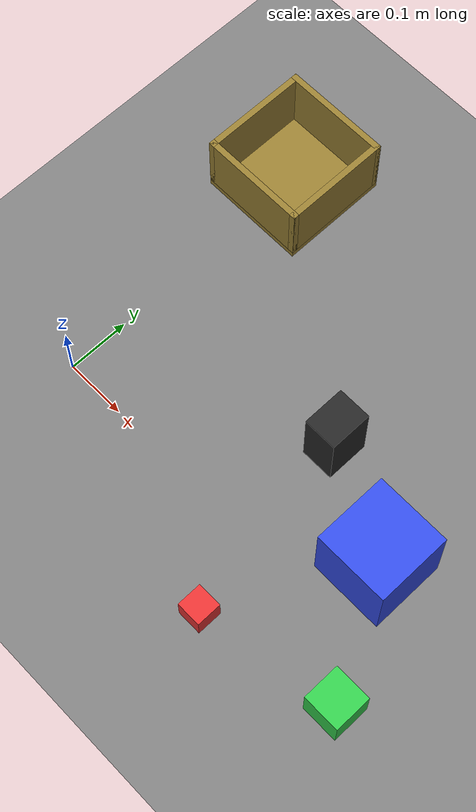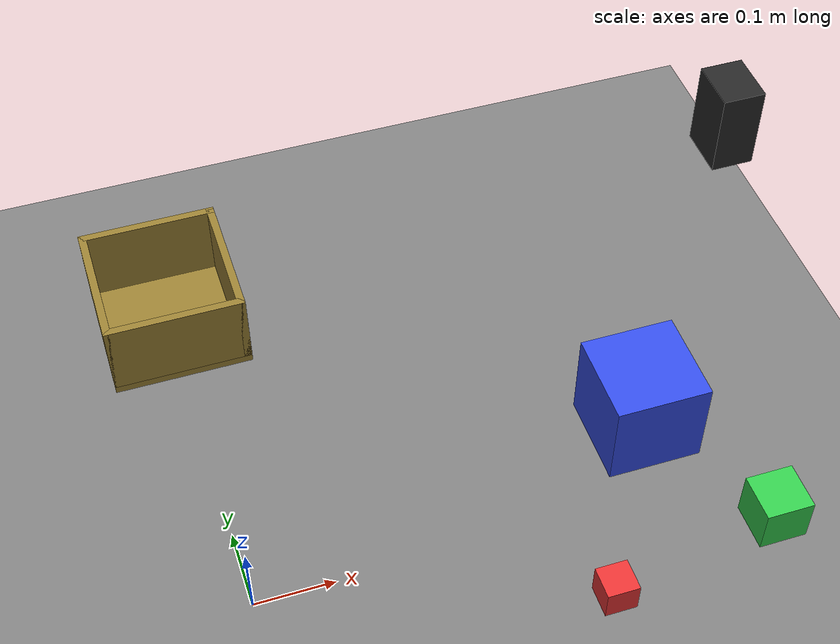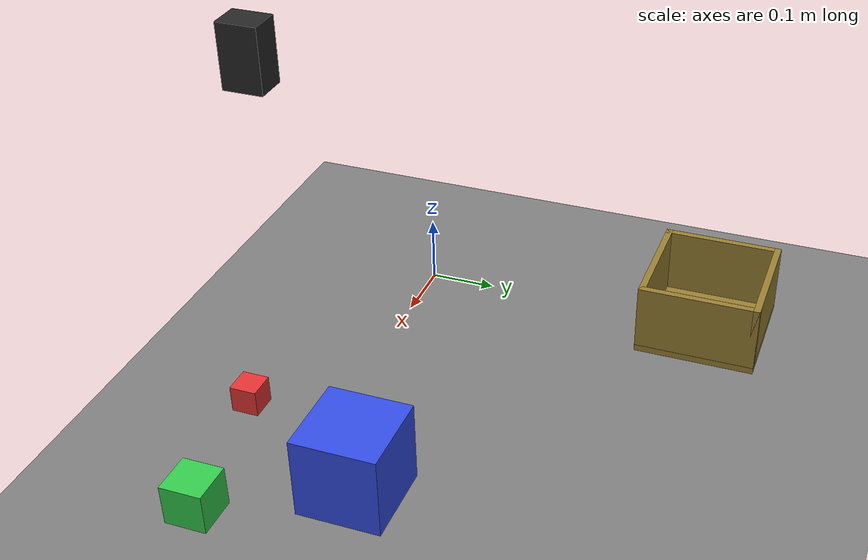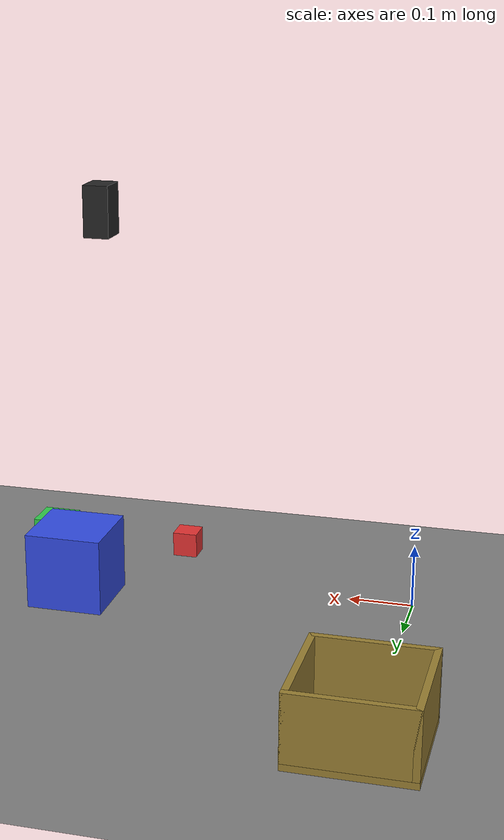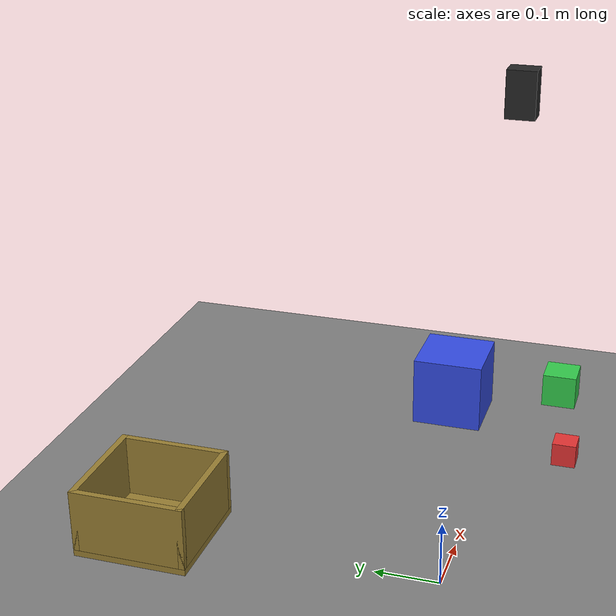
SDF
<?xml version="1.0" ?>
<sdf version="1.9">
  <world name="empty">
    <physics name="1ms" type="ignored">
      <max_step_size>0.001</max_step_size>
      <real_time_factor>1.0</real_time_factor>
    </physics>
    <plugin filename="gz-sim-physics-system" name="gz::sim::systems::Physics"><engine><filename>gz-physics-bullet-featherstone-plugin</filename></engine></plugin>
    <plugin filename="gz-sim-user-commands-system" name="gz::sim::systems::UserCommands"/>
    <plugin filename="gz-sim-scene-broadcaster-system" name="gz::sim::systems::SceneBroadcaster"/>
    <plugin filename="gz-sim-sensors-system" name="gz::sim::systems::Sensors">
      <render_engine>ogre2</render_engine>
    </plugin>

    <light type="directional" name="sun">
      <cast_shadows>true</cast_shadows>
      <pose>0 0 10 0 0 0</pose>
      <diffuse>1 1 1 1</diffuse>
      <specular>0.5 0.5 0.5 1</specular>
      <direction>-0.5 0.1 -0.9</direction>
    </light>

    <model name="ground_plane">
      <static>true</static>
      <link name="link">
        <collision name="collision">
          <geometry><plane><normal>0 0 1</normal><size>10 10</size></plane></geometry>
        </collision>
        <visual name="visual">
          <geometry><plane><normal>0 0 1</normal><size>10 10</size></plane></geometry>
          <material><ambient>0.3 0.3 0.3 1</ambient><diffuse>0.5 0.5 0.5 1</diffuse></material>
        </visual>
      </link>
    </model>

    <model name="box_small">
      <pose>0.40 -0.12 0.02 0 0 0</pose>
      <link name="link">
        <inertial><mass>0.1</mass>
          <inertia><ixx>0.000027</ixx><iyy>0.000027</iyy><izz>0.000027</izz><ixy>0</ixy><ixz>0</ixz><iyz>0</iyz></inertia>
        </inertial>
        <collision name="c"><geometry><box><size>0.04 0.04 0.04</size></box></geometry><surface><friction><ode><mu>1.5</mu><mu2>1.5</mu2></ode></friction></surface></collision>
        <visual name="v"><geometry><box><size>0.04 0.04 0.04</size></box></geometry>
          <material><ambient>0.9 0.2 0.2 1</ambient><diffuse>0.9 0.2 0.2 1</diffuse></material></visual>
      </link>
    </model>

    <model name="box_large">
      <pose>0.52 0.10 0.06 0 0 0</pose>
      <link name="link">
        <inertial><mass>0.5</mass>
          <inertia><ixx>0.0012</ixx><iyy>0.0012</iyy><izz>0.0012</izz><ixy>0</ixy><ixz>0</ixz><iyz>0</iyz></inertia>
        </inertial>
        <collision name="c"><geometry><box><size>0.12 0.12 0.12</size></box></geometry><surface><friction><ode><mu>1.5</mu><mu2>1.5</mu2></ode></friction></surface></collision>
        <visual name="v"><geometry><box><size>0.12 0.12 0.12</size></box></geometry>
          <material><ambient>0.2 0.3 0.9 1</ambient><diffuse>0.2 0.3 0.9 1</diffuse></material></visual>
      </link>
    </model>

    <model name="box_medium">
      <pose>0.62 -0.08 0.03 0 0 0</pose>
      <link name="link">
        <inertial><mass>0.2</mass>
          <inertia><ixx>0.00012</ixx><iyy>0.00012</iyy><izz>0.00012</izz><ixy>0</ixy><ixz>0</ixz><iyz>0</iyz></inertia>
        </inertial>
        <collision name="c"><geometry><box><size>0.06 0.06 0.06</size></box></geometry><surface><friction><ode><mu>1.5</mu><mu2>1.5</mu2></ode></friction></surface></collision>
        <visual name="v"><geometry><box><size>0.06 0.06 0.06</size></box></geometry>
          <material><ambient>0.2 0.8 0.3 1</ambient><diffuse>0.2 0.8 0.3 1</diffuse></material></visual>
      </link>
    </model>

    <model name="container">
      <static>true</static>
      <pose>0.0 0.45 0 0 0 0</pose>
      <link name="link">
        <collision name="floor"><pose>0 0 0.005 0 0 0</pose><geometry><box><size>0.18 0.18 0.01</size></box></geometry></collision>
        <visual name="floor_v"><pose>0 0 0.005 0 0 0</pose><geometry><box><size>0.18 0.18 0.01</size></box></geometry>
          <material><ambient>0.6 0.5 0.2 1</ambient><diffuse>0.6 0.5 0.2 1</diffuse></material></visual>
        <collision name="w1"><pose>0.085 0 0.06 0 0 0</pose><geometry><box><size>0.01 0.18 0.1</size></box></geometry></collision>
        <visual name="w1v"><pose>0.085 0 0.06 0 0 0</pose><geometry><box><size>0.01 0.18 0.1</size></box></geometry>
          <material><ambient>0.6 0.5 0.2 1</ambient><diffuse>0.6 0.5 0.2 1</diffuse></material></visual>
        <collision name="w2"><pose>-0.085 0 0.06 0 0 0</pose><geometry><box><size>0.01 0.18 0.1</size></box></geometry></collision>
        <visual name="w2v"><pose>-0.085 0 0.06 0 0 0</pose><geometry><box><size>0.01 0.18 0.1</size></box></geometry>
          <material><ambient>0.6 0.5 0.2 1</ambient><diffuse>0.6 0.5 0.2 1</diffuse></material></visual>
        <collision name="w3"><pose>0 0.085 0.06 0 0 0</pose><geometry><box><size>0.18 0.01 0.1</size></box></geometry></collision>
        <visual name="w3v"><pose>0 0.085 0.06 0 0 0</pose><geometry><box><size>0.18 0.01 0.1</size></box></geometry>
          <material><ambient>0.6 0.5 0.2 1</ambient><diffuse>0.6 0.5 0.2 1</diffuse></material></visual>
        <collision name="w4"><pose>0 -0.085 0.06 0 0 0</pose><geometry><box><size>0.18 0.01 0.1</size></box></geometry></collision>
        <visual name="w4v"><pose>0 -0.085 0.06 0 0 0</pose><geometry><box><size>0.18 0.01 0.1</size></box></geometry>
          <material><ambient>0.6 0.5 0.2 1</ambient><diffuse>0.6 0.5 0.2 1</diffuse></material></visual>
      </link>
    </model>

    <model name="rgbd_camera">
      <static>true</static>
      <pose>0.5 0 0.6 0 1.5707 0</pose>
      <link name="link">
        <visual name="camera_body">
          <geometry><box><size>0.08 0.05 0.04</size></box></geometry>
          <material><ambient>0.1 0.1 0.1 1</ambient><diffuse>0.15 0.15 0.15 1</diffuse></material>
        </visual>
        <sensor name="rgbd" type="rgbd_camera">
          <camera>
            <horizontal_fov>1.047</horizontal_fov>
            <image><width>640</width><height>480</height></image>
            <clip><near>0.05</near><far>8.0</far></clip>
          </camera>
          <always_on>1</always_on>
          <update_rate>15</update_rate>
          <topic>rgbd</topic>
        </sensor>
      </link>
    </model>
  </world>
</sdf>
